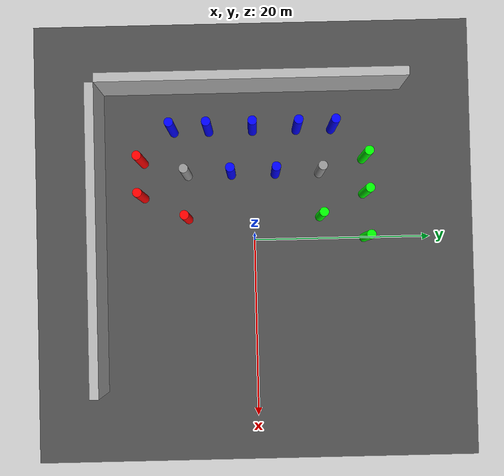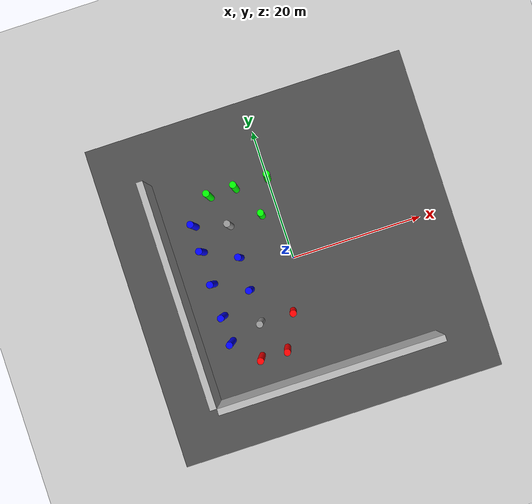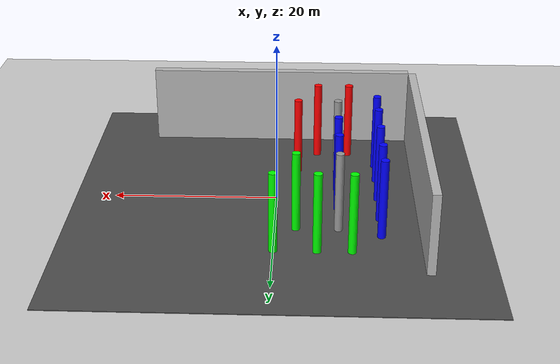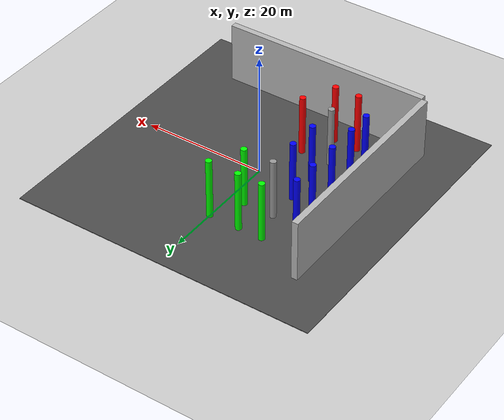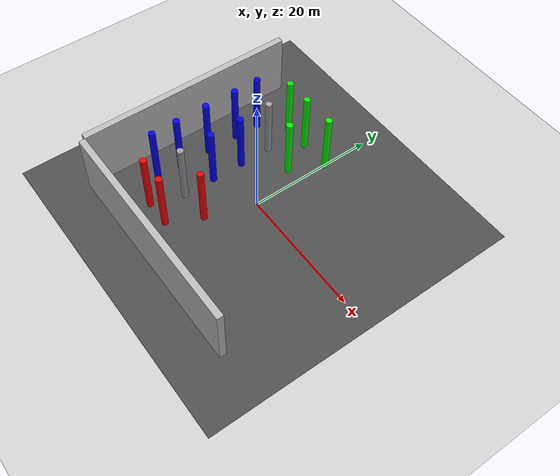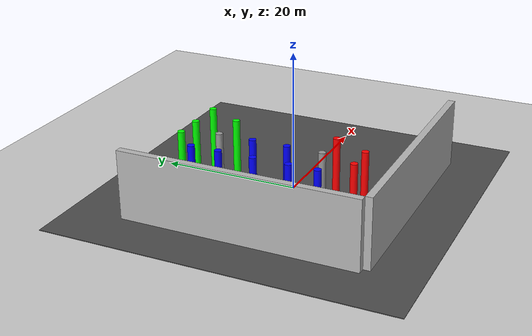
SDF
<sdf version="1.7">
 <world name="default">
  <include><uri>model://sun</uri></include>
  <include><uri>model://ground_plane</uri></include>
  <model name="asphalt_plane">
   <link name="link">
    <inertial>
     <mass>1</mass>
     <inertia><ixx>1</ixx><ixy>0</ixy><ixz>0</ixz><iyy>1</iyy><iyz>0</iyz><izz>1</izz></inertia>
    </inertial>
    <visual name="visual">
     <cast_shadows>0</cast_shadows>
     <geometry><box><size>50 50 0.1</size></box></geometry>
     <material>
      <script>
       <uri>model://asphalt_plane/materials/scripts</uri>
       <uri>model://asphalt_plane/materials/textures</uri>
       <name>vrc/asphalt</name>
      </script>
      <shader type="pixel"><normal_map>__default__</normal_map></shader>
      <ambient>0.5 0.5 0.5 1</ambient>
      <diffuse>0.5 0.5 0.5 1</diffuse>
      <specular>0.2 0.2 0.2 1</specular>
      <emissive>0 0 0 1</emissive>
     </material>
    </visual>
    <collision name="collision">
     <geometry><box><size>50 50 0.1</size></box></geometry>
     <surface>
      <friction>
       <ode><mu>1</mu><mu2>1</mu2><fdir1>0 0 0</fdir1><slip1>0</slip1><slip2>0</slip2></ode>
       <torsional>
        <coefficient>1</coefficient>
        <patch_radius>0</patch_radius>
        <surface_radius>0</surface_radius>
        <use_patch_radius>1</use_patch_radius>
        <ode><slip>0</slip></ode>
       </torsional>
      </friction>
      <bounce><restitution_coefficient>0</restitution_coefficient><threshold>1e+06</threshold></bounce>
      <contact>
       <collide_without_contact>0</collide_without_contact>
       <collide_without_contact_bitmask>1</collide_without_contact_bitmask>
       <collide_bitmask>1</collide_bitmask>
       <ode>
        <soft_cfm>0</soft_cfm>
        <soft_erp>0.2</soft_erp>
        <kp>1e+13</kp>
        <kd>1</kd>
        <max_vel>0.01</max_vel>
        <min_depth>0</min_depth>
       </ode>
       <bullet>
        <split_impulse>1</split_impulse>
        <split_impulse_penetration_threshold>-0.01</split_impulse_penetration_threshold>
        <soft_cfm>0</soft_cfm>
        <soft_erp>0.2</soft_erp>
        <kp>1e+13</kp>
        <kd>1</kd>
       </bullet>
      </contact>
     </surface>
    </collision>
   </link>
   <static>1</static>
   <pose>-0.063761 -0.010768 0 0 -0 0</pose>
  </model>
  <model name="green_cylinder">
   <link name="link">
    <inertial>
     <mass>1</mass>
     <inertia><ixx>0.145833</ixx><ixy>0</ixy><ixz>0</ixz><iyy>0.145833</iyy><iyz>0</iyz><izz>0.125</izz></inertia>
    </inertial>
    <visual name="visual">
     <geometry><cylinder><radius>0.5</radius><length>10</length></cylinder></geometry>
     <material>
      <script><name>Gazebo/Grey</name><uri>file://media/materials/scripts/gazebo.material</uri></script>
      <shader type="pixel"><normal_map>__default__</normal_map></shader>
      <ambient>0 1 0 0</ambient>
      <diffuse>0.7 0.7 0.7 1</diffuse>
      <specular>0.01 0.01 0.01 1</specular>
      <emissive>0 0 0 1</emissive>
     </material>
    </visual>
    <collision name="collision">
     <geometry><cylinder><radius>0.5</radius><length>10</length></cylinder></geometry>
     <surface>
      <friction>
       <ode><mu>1</mu><mu2>1</mu2><fdir1>0 0 0</fdir1><slip1>0</slip1><slip2>0</slip2></ode>
       <torsional>
        <coefficient>1</coefficient>
        <patch_radius>0</patch_radius>
        <surface_radius>0</surface_radius>
        <use_patch_radius>1</use_patch_radius>
        <ode><slip>0</slip></ode>
       </torsional>
      </friction>
      <bounce><restitution_coefficient>0</restitution_coefficient><threshold>1e+06</threshold></bounce>
      <contact>
       <collide_without_contact>0</collide_without_contact>
       <collide_without_contact_bitmask>1</collide_without_contact_bitmask>
       <collide_bitmask>1</collide_bitmask>
       <ode>
        <soft_cfm>0</soft_cfm>
        <soft_erp>0.2</soft_erp>
        <kp>1e+13</kp>
        <kd>1</kd>
        <max_vel>0.01</max_vel>
        <min_depth>0</min_depth>
       </ode>
       <bullet>
        <split_impulse>1</split_impulse>
        <split_impulse_penetration_threshold>-0.01</split_impulse_penetration_threshold>
        <soft_cfm>0</soft_cfm>
        <soft_erp>0.2</soft_erp>
        <kp>1e+13</kp>
        <kd>1</kd>
       </bullet>
      </contact>
     </surface>
    </collision>
   </link>
   <static>1</static>
   <pose>0 12.5 5 0 -0 0</pose>
  </model>
  <model name="blue_cylinder">
   <link name="link">
    <inertial>
     <mass>1</mass>
     <inertia><ixx>0.145833</ixx><ixy>0</ixy><ixz>0</ixz><iyy>0.145833</iyy><iyz>0</iyz><izz>0.125</izz></inertia>
    </inertial>
    <visual name="visual">
     <geometry><cylinder><radius>0.5</radius><length>10</length></cylinder></geometry>
     <material>
      <script><name>Gazebo/Grey</name><uri>file://media/materials/scripts/gazebo.material</uri></script>
      <shader type="pixel"><normal_map>__default__</normal_map></shader>
      <ambient>0 0 1 0</ambient>
      <diffuse>0.7 0.7 0.7 1</diffuse>
      <specular>0.01 0.01 0.01 1</specular>
      <emissive>0 0 0 1</emissive>
     </material>
    </visual>
    <collision name="collision">
     <geometry><cylinder><radius>0.5</radius><length>10</length></cylinder></geometry>
     <surface>
      <friction>
       <ode><mu>1</mu><mu2>1</mu2><fdir1>0 0 0</fdir1><slip1>0</slip1><slip2>0</slip2></ode>
       <torsional>
        <coefficient>1</coefficient>
        <patch_radius>0</patch_radius>
        <surface_radius>0</surface_radius>
        <use_patch_radius>1</use_patch_radius>
        <ode><slip>0</slip></ode>
       </torsional>
      </friction>
      <bounce><restitution_coefficient>0</restitution_coefficient><threshold>1e+06</threshold></bounce>
      <contact>
       <collide_without_contact>0</collide_without_contact>
       <collide_without_contact_bitmask>1</collide_without_contact_bitmask>
       <collide_bitmask>1</collide_bitmask>
       <ode>
        <soft_cfm>0</soft_cfm>
        <soft_erp>0.2</soft_erp>
        <kp>1e+13</kp>
        <kd>1</kd>
        <max_vel>0.01</max_vel>
        <min_depth>0</min_depth>
       </ode>
       <bullet>
        <split_impulse>1</split_impulse>
        <split_impulse_penetration_threshold>-0.01</split_impulse_penetration_threshold>
        <soft_cfm>0</soft_cfm>
        <soft_erp>0.2</soft_erp>
        <kp>1e+13</kp>
        <kd>1</kd>
       </bullet>
      </contact>
     </surface>
    </collision>
   </link>
   <static>1</static>
   <pose>-12.5 0 5 0 -0 0</pose>
  </model>
  <model name="red_cylinder_clone">
   <link name="link">
    <inertial>
     <mass>1</mass>
     <inertia><ixx>0.145833</ixx><ixy>0</ixy><ixz>0</ixz><iyy>0.145833</iyy><iyz>0</iyz><izz>0.125</izz></inertia>
    </inertial>
    <visual name="visual">
     <geometry><cylinder><radius>0.5</radius><length>10</length></cylinder></geometry>
     <material>
      <script><name>Gazebo/Grey</name><uri>file://media/materials/scripts/gazebo.material</uri></script>
      <shader type="pixel"><normal_map>__default__</normal_map></shader>
      <ambient>1 0 0 0</ambient>
      <diffuse>0.7 0.7 0.7 1</diffuse>
      <specular>0.01 0.01 0.01 1</specular>
      <emissive>0 0 0 1</emissive>
     </material>
    </visual>
    <collision name="collision">
     <geometry><cylinder><radius>0.5</radius><length>10</length></cylinder></geometry>
     <surface>
      <friction>
       <ode><mu>1</mu><mu2>1</mu2><fdir1>0 0 0</fdir1><slip1>0</slip1><slip2>0</slip2></ode>
       <torsional>
        <coefficient>1</coefficient>
        <patch_radius>0</patch_radius>
        <surface_radius>0</surface_radius>
        <use_patch_radius>1</use_patch_radius>
        <ode><slip>0</slip></ode>
       </torsional>
      </friction>
      <bounce><restitution_coefficient>0</restitution_coefficient><threshold>1e+06</threshold></bounce>
      <contact>
       <collide_without_contact>0</collide_without_contact>
       <collide_without_contact_bitmask>1</collide_without_contact_bitmask>
       <collide_bitmask>1</collide_bitmask>
       <ode>
        <soft_cfm>0</soft_cfm>
        <soft_erp>0.2</soft_erp>
        <kp>1e+13</kp>
        <kd>1</kd>
        <max_vel>0.01</max_vel>
        <min_depth>0</min_depth>
       </ode>
       <bullet>
        <split_impulse>1</split_impulse>
        <split_impulse_penetration_threshold>-0.01</split_impulse_penetration_threshold>
        <soft_cfm>0</soft_cfm>
        <soft_erp>0.2</soft_erp>
        <kp>1e+13</kp>
        <kd>1</kd>
       </bullet>
      </contact>
     </surface>
    </collision>
   </link>
   <static>1</static>
   <pose>-5 -12.5 5 0 -0 0</pose>
  </model>
  <model name="red_cylinder_clone_1">
   <link name="link">
    <inertial>
     <mass>1</mass>
     <inertia><ixx>0.145833</ixx><ixy>0</ixy><ixz>0</ixz><iyy>0.145833</iyy><iyz>0</iyz><izz>0.125</izz></inertia>
    </inertial>
    <visual name="visual">
     <geometry><cylinder><radius>0.5</radius><length>10</length></cylinder></geometry>
     <material>
      <script><name>Gazebo/Grey</name><uri>file://media/materials/scripts/gazebo.material</uri></script>
      <shader type="pixel"><normal_map>__default__</normal_map></shader>
      <ambient>1 0 0 0</ambient>
      <diffuse>0.7 0.7 0.7 1</diffuse>
      <specular>0.01 0.01 0.01 1</specular>
      <emissive>0 0 0 1</emissive>
     </material>
    </visual>
    <collision name="collision">
     <geometry><cylinder><radius>0.5</radius><length>10</length></cylinder></geometry>
     <surface>
      <friction>
       <ode><mu>1</mu><mu2>1</mu2><fdir1>0 0 0</fdir1><slip1>0</slip1><slip2>0</slip2></ode>
       <torsional>
        <coefficient>1</coefficient>
        <patch_radius>0</patch_radius>
        <surface_radius>0</surface_radius>
        <use_patch_radius>1</use_patch_radius>
        <ode><slip>0</slip></ode>
       </torsional>
      </friction>
      <bounce><restitution_coefficient>0</restitution_coefficient><threshold>1e+06</threshold></bounce>
      <contact>
       <collide_without_contact>0</collide_without_contact>
       <collide_without_contact_bitmask>1</collide_without_contact_bitmask>
       <collide_bitmask>1</collide_bitmask>
       <ode>
        <soft_cfm>0</soft_cfm>
        <soft_erp>0.2</soft_erp>
        <kp>1e+13</kp>
        <kd>1</kd>
        <max_vel>0.01</max_vel>
        <min_depth>0</min_depth>
       </ode>
       <bullet>
        <split_impulse>1</split_impulse>
        <split_impulse_penetration_threshold>-0.01</split_impulse_penetration_threshold>
        <soft_cfm>0</soft_cfm>
        <soft_erp>0.2</soft_erp>
        <kp>1e+13</kp>
        <kd>1</kd>
       </bullet>
      </contact>
     </surface>
    </collision>
   </link>
   <static>1</static>
   <pose>-9 -12.5 5 0 -0 0</pose>
  </model>
  <model name="blue_cylinder_clone">
   <link name="link">
    <inertial>
     <mass>1</mass>
     <inertia><ixx>0.145833</ixx><ixy>0</ixy><ixz>0</ixz><iyy>0.145833</iyy><iyz>0</iyz><izz>0.125</izz></inertia>
    </inertial>
    <visual name="visual">
     <geometry><cylinder><radius>0.5</radius><length>10</length></cylinder></geometry>
     <material>
      <script><name>Gazebo/Grey</name><uri>file://media/materials/scripts/gazebo.material</uri></script>
      <shader type="pixel"><normal_map>__default__</normal_map></shader>
      <ambient>0 0 1 0</ambient>
      <diffuse>0.7 0.7 0.7 1</diffuse>
      <specular>0.01 0.01 0.01 1</specular>
      <emissive>0 0 0 1</emissive>
     </material>
    </visual>
    <collision name="collision">
     <geometry><cylinder><radius>0.5</radius><length>10</length></cylinder></geometry>
     <surface>
      <friction>
       <ode><mu>1</mu><mu2>1</mu2><fdir1>0 0 0</fdir1><slip1>0</slip1><slip2>0</slip2></ode>
       <torsional>
        <coefficient>1</coefficient>
        <patch_radius>0</patch_radius>
        <surface_radius>0</surface_radius>
        <use_patch_radius>1</use_patch_radius>
        <ode><slip>0</slip></ode>
       </torsional>
      </friction>
      <bounce><restitution_coefficient>0</restitution_coefficient><threshold>1e+06</threshold></bounce>
      <contact>
       <collide_without_contact>0</collide_without_contact>
       <collide_without_contact_bitmask>1</collide_without_contact_bitmask>
       <collide_bitmask>1</collide_bitmask>
       <ode>
        <soft_cfm>0</soft_cfm>
        <soft_erp>0.2</soft_erp>
        <kp>1e+13</kp>
        <kd>1</kd>
        <max_vel>0.01</max_vel>
        <min_depth>0</min_depth>
       </ode>
       <bullet>
        <split_impulse>1</split_impulse>
        <split_impulse_penetration_threshold>-0.01</split_impulse_penetration_threshold>
        <soft_cfm>0</soft_cfm>
        <soft_erp>0.2</soft_erp>
        <kp>1e+13</kp>
        <kd>1</kd>
       </bullet>
      </contact>
     </surface>
    </collision>
   </link>
   <static>1</static>
   <pose>-12.5 -5 5 0 -0 0</pose>
  </model>
  <model name="blue_cylinder_clone_0">
   <link name="link">
    <inertial>
     <mass>1</mass>
     <inertia><ixx>0.145833</ixx><ixy>0</ixy><ixz>0</ixz><iyy>0.145833</iyy><iyz>0</iyz><izz>0.125</izz></inertia>
    </inertial>
    <visual name="visual">
     <geometry><cylinder><radius>0.5</radius><length>10</length></cylinder></geometry>
     <material>
      <script><name>Gazebo/Grey</name><uri>file://media/materials/scripts/gazebo.material</uri></script>
      <shader type="pixel"><normal_map>__default__</normal_map></shader>
      <ambient>0 0 1 0</ambient>
      <diffuse>0.7 0.7 0.7 1</diffuse>
      <specular>0.01 0.01 0.01 1</specular>
      <emissive>0 0 0 1</emissive>
     </material>
    </visual>
    <collision name="collision">
     <geometry><cylinder><radius>0.5</radius><length>10</length></cylinder></geometry>
     <surface>
      <friction>
       <ode><mu>1</mu><mu2>1</mu2><fdir1>0 0 0</fdir1><slip1>0</slip1><slip2>0</slip2></ode>
       <torsional>
        <coefficient>1</coefficient>
        <patch_radius>0</patch_radius>
        <surface_radius>0</surface_radius>
        <use_patch_radius>1</use_patch_radius>
        <ode><slip>0</slip></ode>
       </torsional>
      </friction>
      <bounce><restitution_coefficient>0</restitution_coefficient><threshold>1e+06</threshold></bounce>
      <contact>
       <collide_without_contact>0</collide_without_contact>
       <collide_without_contact_bitmask>1</collide_without_contact_bitmask>
       <collide_bitmask>1</collide_bitmask>
       <ode>
        <soft_cfm>0</soft_cfm>
        <soft_erp>0.2</soft_erp>
        <kp>1e+13</kp>
        <kd>1</kd>
        <max_vel>0.01</max_vel>
        <min_depth>0</min_depth>
       </ode>
       <bullet>
        <split_impulse>1</split_impulse>
        <split_impulse_penetration_threshold>-0.01</split_impulse_penetration_threshold>
        <soft_cfm>0</soft_cfm>
        <soft_erp>0.2</soft_erp>
        <kp>1e+13</kp>
        <kd>1</kd>
       </bullet>
      </contact>
     </surface>
    </collision>
   </link>
   <static>1</static>
   <pose>-12.5 5 5 0 -0 0</pose>
  </model>
  <model name="blue_cylinder_clone_1">
   <link name="link">
    <inertial>
     <mass>1</mass>
     <inertia><ixx>0.145833</ixx><ixy>0</ixy><ixz>0</ixz><iyy>0.145833</iyy><iyz>0</iyz><izz>0.125</izz></inertia>
    </inertial>
    <visual name="visual">
     <geometry><cylinder><radius>0.5</radius><length>10</length></cylinder></geometry>
     <material>
      <script><name>Gazebo/Grey</name><uri>file://media/materials/scripts/gazebo.material</uri></script>
      <shader type="pixel"><normal_map>__default__</normal_map></shader>
      <ambient>0 0 1 0</ambient>
      <diffuse>0.7 0.7 0.7 1</diffuse>
      <specular>0.01 0.01 0.01 1</specular>
      <emissive>0 0 0 1</emissive>
     </material>
    </visual>
    <collision name="collision">
     <geometry><cylinder><radius>0.5</radius><length>10</length></cylinder></geometry>
     <surface>
      <friction>
       <ode><mu>1</mu><mu2>1</mu2><fdir1>0 0 0</fdir1><slip1>0</slip1><slip2>0</slip2></ode>
       <torsional>
        <coefficient>1</coefficient>
        <patch_radius>0</patch_radius>
        <surface_radius>0</surface_radius>
        <use_patch_radius>1</use_patch_radius>
        <ode><slip>0</slip></ode>
       </torsional>
      </friction>
      <bounce><restitution_coefficient>0</restitution_coefficient><threshold>1e+06</threshold></bounce>
      <contact>
       <collide_without_contact>0</collide_without_contact>
       <collide_without_contact_bitmask>1</collide_without_contact_bitmask>
       <collide_bitmask>1</collide_bitmask>
       <ode>
        <soft_cfm>0</soft_cfm>
        <soft_erp>0.2</soft_erp>
        <kp>1e+13</kp>
        <kd>1</kd>
        <max_vel>0.01</max_vel>
        <min_depth>0</min_depth>
       </ode>
       <bullet>
        <split_impulse>1</split_impulse>
        <split_impulse_penetration_threshold>-0.01</split_impulse_penetration_threshold>
        <soft_cfm>0</soft_cfm>
        <soft_erp>0.2</soft_erp>
        <kp>1e+13</kp>
        <kd>1</kd>
       </bullet>
      </contact>
     </surface>
    </collision>
   </link>
   <static>1</static>
   <pose>-12.5 9 5 0 -0 0</pose>
  </model>
  <model name="blue_cylinder_clone_2">
   <link name="link">
    <inertial>
     <mass>1</mass>
     <inertia><ixx>0.145833</ixx><ixy>0</ixy><ixz>0</ixz><iyy>0.145833</iyy><iyz>0</iyz><izz>0.125</izz></inertia>
    </inertial>
    <visual name="visual">
     <geometry><cylinder><radius>0.5</radius><length>10</length></cylinder></geometry>
     <material>
      <script><name>Gazebo/Grey</name><uri>file://media/materials/scripts/gazebo.material</uri></script>
      <shader type="pixel"><normal_map>__default__</normal_map></shader>
      <ambient>0 0 1 0</ambient>
      <diffuse>0.7 0.7 0.7 1</diffuse>
      <specular>0.01 0.01 0.01 1</specular>
      <emissive>0 0 0 1</emissive>
     </material>
    </visual>
    <collision name="collision">
     <geometry><cylinder><radius>0.5</radius><length>10</length></cylinder></geometry>
     <surface>
      <friction>
       <ode><mu>1</mu><mu2>1</mu2><fdir1>0 0 0</fdir1><slip1>0</slip1><slip2>0</slip2></ode>
       <torsional>
        <coefficient>1</coefficient>
        <patch_radius>0</patch_radius>
        <surface_radius>0</surface_radius>
        <use_patch_radius>1</use_patch_radius>
        <ode><slip>0</slip></ode>
       </torsional>
      </friction>
      <bounce><restitution_coefficient>0</restitution_coefficient><threshold>1e+06</threshold></bounce>
      <contact>
       <collide_without_contact>0</collide_without_contact>
       <collide_without_contact_bitmask>1</collide_without_contact_bitmask>
       <collide_bitmask>1</collide_bitmask>
       <ode>
        <soft_cfm>0</soft_cfm>
        <soft_erp>0.2</soft_erp>
        <kp>1e+13</kp>
        <kd>1</kd>
        <max_vel>0.01</max_vel>
        <min_depth>0</min_depth>
       </ode>
       <bullet>
        <split_impulse>1</split_impulse>
        <split_impulse_penetration_threshold>-0.01</split_impulse_penetration_threshold>
        <soft_cfm>0</soft_cfm>
        <soft_erp>0.2</soft_erp>
        <kp>1e+13</kp>
        <kd>1</kd>
       </bullet>
      </contact>
     </surface>
    </collision>
   </link>
   <static>1</static>
   <pose>-12.5 -9 5 0 -0 0</pose>
  </model>
  <model name="green_cylinder_clone">
   <link name="link">
    <inertial>
     <mass>1</mass>
     <inertia><ixx>0.145833</ixx><ixy>0</ixy><ixz>0</ixz><iyy>0.145833</iyy><iyz>0</iyz><izz>0.125</izz></inertia>
    </inertial>
    <visual name="visual">
     <geometry><cylinder><radius>0.5</radius><length>10</length></cylinder></geometry>
     <material>
      <script><name>Gazebo/Grey</name><uri>file://media/materials/scripts/gazebo.material</uri></script>
      <shader type="pixel"><normal_map>__default__</normal_map></shader>
      <ambient>0 1 0 0</ambient>
      <diffuse>0.7 0.7 0.7 1</diffuse>
      <specular>0.01 0.01 0.01 1</specular>
      <emissive>0 0 0 1</emissive>
     </material>
    </visual>
    <collision name="collision">
     <geometry><cylinder><radius>0.5</radius><length>10</length></cylinder></geometry>
     <surface>
      <friction>
       <ode><mu>1</mu><mu2>1</mu2><fdir1>0 0 0</fdir1><slip1>0</slip1><slip2>0</slip2></ode>
       <torsional>
        <coefficient>1</coefficient>
        <patch_radius>0</patch_radius>
        <surface_radius>0</surface_radius>
        <use_patch_radius>1</use_patch_radius>
        <ode><slip>0</slip></ode>
       </torsional>
      </friction>
      <bounce><restitution_coefficient>0</restitution_coefficient><threshold>1e+06</threshold></bounce>
      <contact>
       <collide_without_contact>0</collide_without_contact>
       <collide_without_contact_bitmask>1</collide_without_contact_bitmask>
       <collide_bitmask>1</collide_bitmask>
       <ode>
        <soft_cfm>0</soft_cfm>
        <soft_erp>0.2</soft_erp>
        <kp>1e+13</kp>
        <kd>1</kd>
        <max_vel>0.01</max_vel>
        <min_depth>0</min_depth>
       </ode>
       <bullet>
        <split_impulse>1</split_impulse>
        <split_impulse_penetration_threshold>-0.01</split_impulse_penetration_threshold>
        <soft_cfm>0</soft_cfm>
        <soft_erp>0.2</soft_erp>
        <kp>1e+13</kp>
        <kd>1</kd>
       </bullet>
      </contact>
     </surface>
    </collision>
   </link>
   <static>1</static>
   <pose>-5 12.5 5 0 -0 0</pose>
  </model>
  <model name="green_cylinder_clone_1">
   <link name="link">
    <inertial>
     <mass>1</mass>
     <inertia><ixx>0.145833</ixx><ixy>0</ixy><ixz>0</ixz><iyy>0.145833</iyy><iyz>0</iyz><izz>0.125</izz></inertia>
    </inertial>
    <visual name="visual">
     <geometry><cylinder><radius>0.5</radius><length>10</length></cylinder></geometry>
     <material>
      <script><name>Gazebo/Grey</name><uri>file://media/materials/scripts/gazebo.material</uri></script>
      <shader type="pixel"><normal_map>__default__</normal_map></shader>
      <ambient>0 1 0 0</ambient>
      <diffuse>0.7 0.7 0.7 1</diffuse>
      <specular>0.01 0.01 0.01 1</specular>
      <emissive>0 0 0 1</emissive>
     </material>
    </visual>
    <collision name="collision">
     <geometry><cylinder><radius>0.5</radius><length>10</length></cylinder></geometry>
     <surface>
      <friction>
       <ode><mu>1</mu><mu2>1</mu2><fdir1>0 0 0</fdir1><slip1>0</slip1><slip2>0</slip2></ode>
       <torsional>
        <coefficient>1</coefficient>
        <patch_radius>0</patch_radius>
        <surface_radius>0</surface_radius>
        <use_patch_radius>1</use_patch_radius>
        <ode><slip>0</slip></ode>
       </torsional>
      </friction>
      <bounce><restitution_coefficient>0</restitution_coefficient><threshold>1e+06</threshold></bounce>
      <contact>
       <collide_without_contact>0</collide_without_contact>
       <collide_without_contact_bitmask>1</collide_without_contact_bitmask>
       <collide_bitmask>1</collide_bitmask>
       <ode>
        <soft_cfm>0</soft_cfm>
        <soft_erp>0.2</soft_erp>
        <kp>1e+13</kp>
        <kd>1</kd>
        <max_vel>0.01</max_vel>
        <min_depth>0</min_depth>
       </ode>
       <bullet>
        <split_impulse>1</split_impulse>
        <split_impulse_penetration_threshold>-0.01</split_impulse_penetration_threshold>
        <soft_cfm>0</soft_cfm>
        <soft_erp>0.2</soft_erp>
        <kp>1e+13</kp>
        <kd>1</kd>
       </bullet>
      </contact>
     </surface>
    </collision>
   </link>
   <static>1</static>
   <pose>-9 12.5 5 0 -0 0</pose>
  </model>
  <model name="red_cylinder_clone_4">
   <link name="link">
    <inertial>
     <mass>1</mass>
     <inertia><ixx>0.145833</ixx><ixy>0</ixy><ixz>0</ixz><iyy>0.145833</iyy><iyz>0</iyz><izz>0.125</izz></inertia>
    </inertial>
    <visual name="visual">
     <geometry><cylinder><radius>0.5</radius><length>10</length></cylinder></geometry>
     <material>
      <script><name>Gazebo/Grey</name><uri>file://media/materials/scripts/gazebo.material</uri></script>
      <shader type="pixel"><normal_map>__default__</normal_map></shader>
      <ambient>1 0 0 0</ambient>
      <diffuse>0.7 0.7 0.7 1</diffuse>
      <specular>0.01 0.01 0.01 1</specular>
      <emissive>0 0 0 1</emissive>
     </material>
    </visual>
    <collision name="collision">
     <geometry><cylinder><radius>0.5</radius><length>10</length></cylinder></geometry>
     <surface>
      <friction>
       <ode><mu>1</mu><mu2>1</mu2><fdir1>0 0 0</fdir1><slip1>0</slip1><slip2>0</slip2></ode>
       <torsional>
        <coefficient>1</coefficient>
        <patch_radius>0</patch_radius>
        <surface_radius>0</surface_radius>
        <use_patch_radius>1</use_patch_radius>
        <ode><slip>0</slip></ode>
       </torsional>
      </friction>
      <bounce><restitution_coefficient>0</restitution_coefficient><threshold>1e+06</threshold></bounce>
      <contact>
       <collide_without_contact>0</collide_without_contact>
       <collide_without_contact_bitmask>1</collide_without_contact_bitmask>
       <collide_bitmask>1</collide_bitmask>
       <ode>
        <soft_cfm>0</soft_cfm>
        <soft_erp>0.2</soft_erp>
        <kp>1e+13</kp>
        <kd>1</kd>
        <max_vel>0.01</max_vel>
        <min_depth>0</min_depth>
       </ode>
       <bullet>
        <split_impulse>1</split_impulse>
        <split_impulse_penetration_threshold>-0.01</split_impulse_penetration_threshold>
        <soft_cfm>0</soft_cfm>
        <soft_erp>0.2</soft_erp>
        <kp>1e+13</kp>
        <kd>1</kd>
       </bullet>
      </contact>
     </surface>
    </collision>
   </link>
   <static>1</static>
   <pose>-2.5 -7.5 5 0 -0 0</pose>
  </model>
  <model name="green_cylinder_clone_0_clone">
   <link name="link">
    <inertial>
     <mass>1</mass>
     <inertia><ixx>0.145833</ixx><ixy>0</ixy><ixz>0</ixz><iyy>0.145833</iyy><iyz>0</iyz><izz>0.125</izz></inertia>
    </inertial>
    <visual name="visual">
     <geometry><cylinder><radius>0.5</radius><length>10</length></cylinder></geometry>
     <material>
      <script><name>Gazebo/Grey</name><uri>file://media/materials/scripts/gazebo.material</uri></script>
      <shader type="pixel"><normal_map>__default__</normal_map></shader>
      <ambient>0 1 0 0</ambient>
      <diffuse>0.7 0.7 0.7 1</diffuse>
      <specular>0.01 0.01 0.01 1</specular>
      <emissive>0 0 0 1</emissive>
     </material>
    </visual>
    <collision name="collision">
     <geometry><cylinder><radius>0.5</radius><length>10</length></cylinder></geometry>
     <surface>
      <friction>
       <ode><mu>1</mu><mu2>1</mu2><fdir1>0 0 0</fdir1><slip1>0</slip1><slip2>0</slip2></ode>
       <torsional>
        <coefficient>1</coefficient>
        <patch_radius>0</patch_radius>
        <surface_radius>0</surface_radius>
        <use_patch_radius>1</use_patch_radius>
        <ode><slip>0</slip></ode>
       </torsional>
      </friction>
      <bounce><restitution_coefficient>0</restitution_coefficient><threshold>1e+06</threshold></bounce>
      <contact>
       <collide_without_contact>0</collide_without_contact>
       <collide_without_contact_bitmask>1</collide_without_contact_bitmask>
       <collide_bitmask>1</collide_bitmask>
       <ode>
        <soft_cfm>0</soft_cfm>
        <soft_erp>0.2</soft_erp>
        <kp>1e+13</kp>
        <kd>1</kd>
        <max_vel>0.01</max_vel>
        <min_depth>0</min_depth>
       </ode>
       <bullet>
        <split_impulse>1</split_impulse>
        <split_impulse_penetration_threshold>-0.01</split_impulse_penetration_threshold>
        <soft_cfm>0</soft_cfm>
        <soft_erp>0.2</soft_erp>
        <kp>1e+13</kp>
        <kd>1</kd>
       </bullet>
      </contact>
     </surface>
    </collision>
   </link>
   <static>1</static>
   <pose>-2.5 7.5 5 0 -0 0</pose>
  </model>
  <model name="blue_cylinder_clone_clone">
   <link name="link">
    <inertial>
     <mass>1</mass>
     <inertia><ixx>0.145833</ixx><ixy>0</ixy><ixz>0</ixz><iyy>0.145833</iyy><iyz>0</iyz><izz>0.125</izz></inertia>
    </inertial>
    <visual name="visual">
     <geometry><cylinder><radius>0.5</radius><length>10</length></cylinder></geometry>
     <material>
      <script><name>Gazebo/Grey</name><uri>file://media/materials/scripts/gazebo.material</uri></script>
      <shader type="pixel"><normal_map>__default__</normal_map></shader>
      <ambient>0 0 1 0</ambient>
      <diffuse>0.7 0.7 0.7 1</diffuse>
      <specular>0.01 0.01 0.01 1</specular>
      <emissive>0 0 0 1</emissive>
     </material>
    </visual>
    <collision name="collision">
     <geometry><cylinder><radius>0.5</radius><length>10</length></cylinder></geometry>
     <surface>
      <friction>
       <ode><mu>1</mu><mu2>1</mu2><fdir1>0 0 0</fdir1><slip1>0</slip1><slip2>0</slip2></ode>
       <torsional>
        <coefficient>1</coefficient>
        <patch_radius>0</patch_radius>
        <surface_radius>0</surface_radius>
        <use_patch_radius>1</use_patch_radius>
        <ode><slip>0</slip></ode>
       </torsional>
      </friction>
      <bounce><restitution_coefficient>0</restitution_coefficient><threshold>1e+06</threshold></bounce>
      <contact>
       <collide_without_contact>0</collide_without_contact>
       <collide_without_contact_bitmask>1</collide_without_contact_bitmask>
       <collide_bitmask>1</collide_bitmask>
       <ode>
        <soft_cfm>0</soft_cfm>
        <soft_erp>0.2</soft_erp>
        <kp>1e+13</kp>
        <kd>1</kd>
        <max_vel>0.01</max_vel>
        <min_depth>0</min_depth>
       </ode>
       <bullet>
        <split_impulse>1</split_impulse>
        <split_impulse_penetration_threshold>-0.01</split_impulse_penetration_threshold>
        <soft_cfm>0</soft_cfm>
        <soft_erp>0.2</soft_erp>
        <kp>1e+13</kp>
        <kd>1</kd>
       </bullet>
      </contact>
     </surface>
    </collision>
   </link>
   <static>1</static>
   <pose>-7.5 -2.5 5 0 -0 0</pose>
  </model>
  <model name="blue_cylinder_clone_3">
   <link name="link">
    <inertial>
     <mass>1</mass>
     <inertia><ixx>0.145833</ixx><ixy>0</ixy><ixz>0</ixz><iyy>0.145833</iyy><iyz>0</iyz><izz>0.125</izz></inertia>
    </inertial>
    <visual name="visual">
     <geometry><cylinder><radius>0.5</radius><length>10</length></cylinder></geometry>
     <material>
      <script><name>Gazebo/Grey</name><uri>file://media/materials/scripts/gazebo.material</uri></script>
      <shader type="pixel"><normal_map>__default__</normal_map></shader>
      <ambient>0 0 1 0</ambient>
      <diffuse>0.7 0.7 0.7 1</diffuse>
      <specular>0.01 0.01 0.01 1</specular>
      <emissive>0 0 0 1</emissive>
     </material>
    </visual>
    <collision name="collision">
     <geometry><cylinder><radius>0.5</radius><length>10</length></cylinder></geometry>
     <surface>
      <friction>
       <ode><mu>1</mu><mu2>1</mu2><fdir1>0 0 0</fdir1><slip1>0</slip1><slip2>0</slip2></ode>
       <torsional>
        <coefficient>1</coefficient>
        <patch_radius>0</patch_radius>
        <surface_radius>0</surface_radius>
        <use_patch_radius>1</use_patch_radius>
        <ode><slip>0</slip></ode>
       </torsional>
      </friction>
      <bounce><restitution_coefficient>0</restitution_coefficient><threshold>1e+06</threshold></bounce>
      <contact>
       <collide_without_contact>0</collide_without_contact>
       <collide_without_contact_bitmask>1</collide_without_contact_bitmask>
       <collide_bitmask>1</collide_bitmask>
       <ode>
        <soft_cfm>0</soft_cfm>
        <soft_erp>0.2</soft_erp>
        <kp>1e+13</kp>
        <kd>1</kd>
        <max_vel>0.01</max_vel>
        <min_depth>0</min_depth>
       </ode>
       <bullet>
        <split_impulse>1</split_impulse>
        <split_impulse_penetration_threshold>-0.01</split_impulse_penetration_threshold>
        <soft_cfm>0</soft_cfm>
        <soft_erp>0.2</soft_erp>
        <kp>1e+13</kp>
        <kd>1</kd>
       </bullet>
      </contact>
     </surface>
    </collision>
   </link>
   <static>1</static>
   <pose>-7.5 2.5 5 0 -0 0</pose>
  </model>
  <model name="black_cylinder">
   <link name="link">
    <inertial>
     <mass>1</mass>
     <inertia><ixx>0.145833</ixx><ixy>0</ixy><ixz>0</ixz><iyy>0.145833</iyy><iyz>0</iyz><izz>0.125</izz></inertia>
    </inertial>
    <visual name="visual">
     <geometry><cylinder><radius>0.5</radius><length>10</length></cylinder></geometry>
     <material>
      <script><name>Gazebo/Grey</name><uri>file://media/materials/scripts/gazebo.material</uri></script>
      <shader type="pixel"><normal_map>__default__</normal_map></shader>
      <ambient>0.3 0.3 0.3 1</ambient>
      <diffuse>0.7 0.7 0.7 1</diffuse>
      <specular>0.01 0.01 0.01 1</specular>
      <emissive>0 0 0 1</emissive>
     </material>
    </visual>
    <collision name="collision">
     <geometry><cylinder><radius>0.5</radius><length>10</length></cylinder></geometry>
     <surface>
      <friction>
       <ode><mu>1</mu><mu2>1</mu2><fdir1>0 0 0</fdir1><slip1>0</slip1><slip2>0</slip2></ode>
       <torsional>
        <coefficient>1</coefficient>
        <patch_radius>0</patch_radius>
        <surface_radius>0</surface_radius>
        <use_patch_radius>1</use_patch_radius>
        <ode><slip>0</slip></ode>
       </torsional>
      </friction>
      <bounce><restitution_coefficient>0</restitution_coefficient><threshold>1e+06</threshold></bounce>
      <contact>
       <collide_without_contact>0</collide_without_contact>
       <collide_without_contact_bitmask>1</collide_without_contact_bitmask>
       <collide_bitmask>1</collide_bitmask>
       <ode>
        <soft_cfm>0</soft_cfm>
        <soft_erp>0.2</soft_erp>
        <kp>1e+13</kp>
        <kd>1</kd>
        <max_vel>0.01</max_vel>
        <min_depth>0</min_depth>
       </ode>
       <bullet>
        <split_impulse>1</split_impulse>
        <split_impulse_penetration_threshold>-0.01</split_impulse_penetration_threshold>
        <soft_cfm>0</soft_cfm>
        <soft_erp>0.2</soft_erp>
        <kp>1e+13</kp>
        <kd>1</kd>
       </bullet>
      </contact>
     </surface>
    </collision>
   </link>
   <static>1</static>
   <pose>-7.5 -7.5 5 0 -0 0</pose>
  </model>
  <model name="black_cylinder_clone_0">
   <link name="link">
    <inertial>
     <mass>1</mass>
     <inertia><ixx>0.145833</ixx><ixy>0</ixy><ixz>0</ixz><iyy>0.145833</iyy><iyz>0</iyz><izz>0.125</izz></inertia>
    </inertial>
    <visual name="visual">
     <geometry><cylinder><radius>0.5</radius><length>10</length></cylinder></geometry>
     <material>
      <script><name>Gazebo/Grey</name><uri>file://media/materials/scripts/gazebo.material</uri></script>
      <shader type="pixel"><normal_map>__default__</normal_map></shader>
      <ambient>0.3 0.3 0.3 1</ambient>
      <diffuse>0.7 0.7 0.7 1</diffuse>
      <specular>0.01 0.01 0.01 1</specular>
      <emissive>0 0 0 1</emissive>
     </material>
    </visual>
    <collision name="collision">
     <geometry><cylinder><radius>0.5</radius><length>10</length></cylinder></geometry>
     <surface>
      <friction>
       <ode><mu>1</mu><mu2>1</mu2><fdir1>0 0 0</fdir1><slip1>0</slip1><slip2>0</slip2></ode>
       <torsional>
        <coefficient>1</coefficient>
        <patch_radius>0</patch_radius>
        <surface_radius>0</surface_radius>
        <use_patch_radius>1</use_patch_radius>
        <ode><slip>0</slip></ode>
       </torsional>
      </friction>
      <bounce><restitution_coefficient>0</restitution_coefficient><threshold>1e+06</threshold></bounce>
      <contact>
       <collide_without_contact>0</collide_without_contact>
       <collide_without_contact_bitmask>1</collide_without_contact_bitmask>
       <collide_bitmask>1</collide_bitmask>
       <ode>
        <soft_cfm>0</soft_cfm>
        <soft_erp>0.2</soft_erp>
        <kp>1e+13</kp>
        <kd>1</kd>
        <max_vel>0.01</max_vel>
        <min_depth>0</min_depth>
       </ode>
       <bullet>
        <split_impulse>1</split_impulse>
        <split_impulse_penetration_threshold>-0.01</split_impulse_penetration_threshold>
        <soft_cfm>0</soft_cfm>
        <soft_erp>0.2</soft_erp>
        <kp>1e+13</kp>
        <kd>1</kd>
       </bullet>
      </contact>
     </surface>
    </collision>
   </link>
   <static>1</static>
   <pose>-7.5 7.5 5 0 -0 0</pose>
  </model>
  <include><pose>0 -17.5 5 0 -0 0</pose><uri>model://wall_flower</uri></include>
  <include><uri>model://wall_town</uri><pose>-17.5 0 5 0 0 0</pose></include>
 </world>
</sdf>
